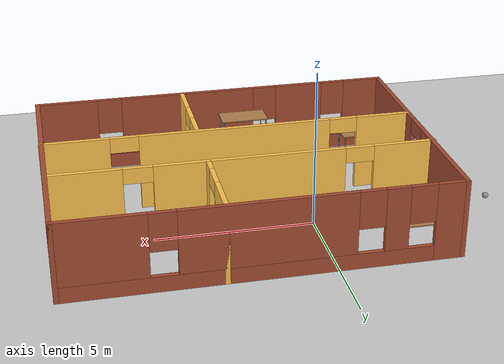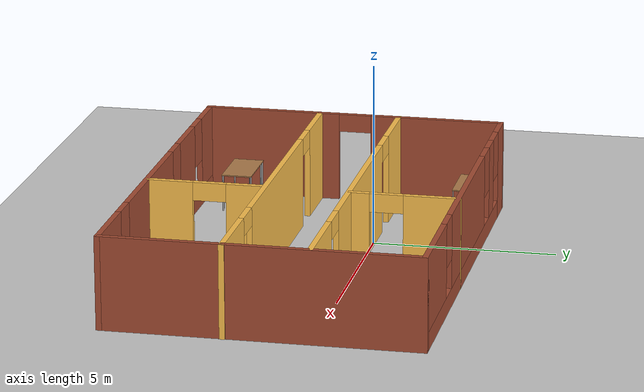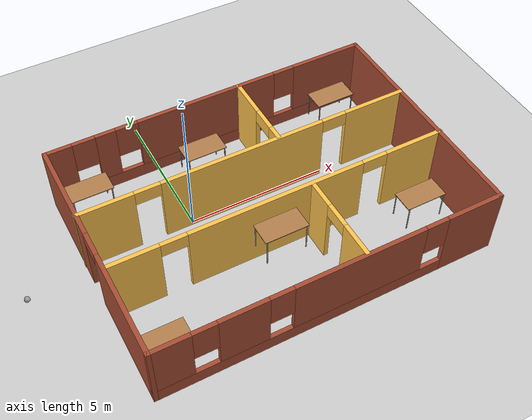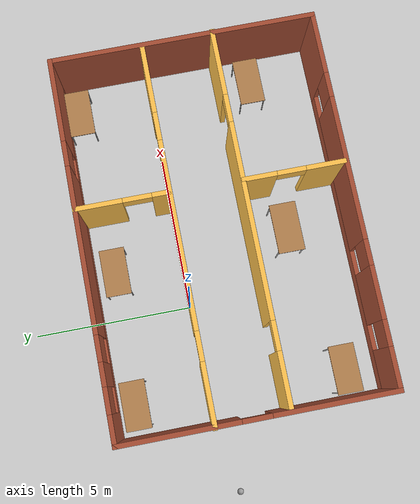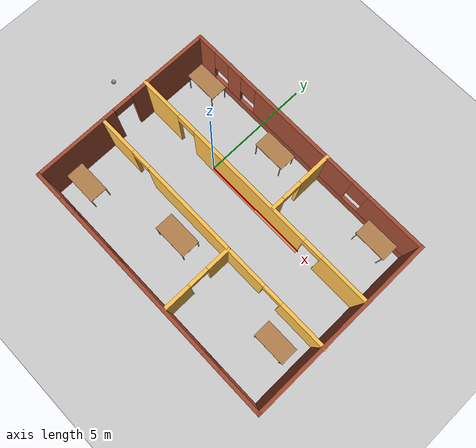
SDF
<sdf version="1.6">
 <world name="default">
  <plugin name="welcome" filename="libwelcome.so"/>
  <light name="sun" type="directional">
   <pose>0 0 10 0 -0 0</pose>
   <diffuse>0.8 0.8 0.8 1</diffuse>
   <specular>0.2 0.2 0.2 1</specular>
   <attenuation>
    <range>1000</range>
    <constant>0.9</constant>
    <linear>0.01</linear>
    <quadratic>0.001</quadratic>
   </attenuation>
   <direction>-0.5 0.1 -0.9</direction>
  </light>
  <model name="ground_plane">
   <static>1</static>
   <link name="link">
    <collision name="collision">
     <geometry><plane><normal>0 0 1</normal><size>100 100</size></plane></geometry>
     <surface><friction><ode><mu>100</mu><mu2>50</mu2></ode></friction></surface>
    </collision>
    <visual name="visual">
     <cast_shadows>0</cast_shadows>
     <geometry><plane><normal>0 0 1</normal><size>100 100</size></plane></geometry>
     <material>
      <script><uri>file://media/materials/scripts/gazebo.material</uri><name>Gazebo/Grey</name></script>
     </material>
    </visual>
   </link>
  </model>
  <gravity>0 0 -9.8</gravity>
  <magnetic_field>6e-06 2.3e-05 -4.2e-05</magnetic_field>
  <atmosphere type="adiabatic"/>
  <physics name="default_physics" default="0" type="ode">
   <max_step_size>0.001</max_step_size>
   <real_time_factor>1</real_time_factor>
   <real_time_update_rate>1000</real_time_update_rate>
  </physics>
  <scene><ambient>0.4 0.4 0.4 1</ambient><background>0.7 0.7 0.7 1</background><shadows>1</shadows></scene>
  <spherical_coordinates>
   <surface_model>EARTH_WGS84</surface_model>
   <latitude_deg>0</latitude_deg>
   <longitude_deg>0</longitude_deg>
   <elevation>0</elevation>
   <heading_deg>0</heading_deg>
  </spherical_coordinates>
  <model name="mybuilding">
   <pose>2.17009 -1.29799 0 0 -0 0</pose>
   <link name="Wall_11">
    <pose>0.023394 -0.971692 0 0 -0 0</pose>
    <visual name="Wall_11_Visual_0">
     <pose>-5.08798 0 1.25 0 -0 0</pose>
     <geometry><box><size>1.82404 0.15 2.5</size></box></geometry>
     <material>
      <script><uri>file://media/materials/scripts/gazebo.material</uri><name>Gazebo/Grey</name></script>
      <ambient>1 0.764706 0.305882 1</ambient>
     </material>
     <meta><layer>0</layer></meta>
    </visual>
    <collision name="Wall_11_Collision_0">
     <geometry><box><size>1.82404 0.15 2.5</size></box></geometry>
     <pose>-5.08798 0 1.25 0 -0 0</pose>
    </collision>
    <visual name="Wall_11_Visual_1">
     <pose>-0.18176 0 1.25 0 -0 0</pose>
     <geometry><box><size>6.1884 0.15 2.5</size></box></geometry>
     <material>
      <script><uri>file://media/materials/scripts/gazebo.material</uri><name>Gazebo/Grey</name></script>
      <ambient>1 0.764706 0.305882 1</ambient>
     </material>
     <meta><layer>0</layer></meta>
    </visual>
    <collision name="Wall_11_Collision_1">
     <geometry><box><size>6.1884 0.15 2.5</size></box></geometry>
     <pose>-0.18176 0 1.25 0 -0 0</pose>
    </collision>
    <visual name="Wall_11_Visual_2">
     <pose>4.90622 0 1.25 0 -0 0</pose>
     <geometry><box><size>2.18756 0.15 2.5</size></box></geometry>
     <material>
      <script><uri>file://media/materials/scripts/gazebo.material</uri><name>Gazebo/Grey</name></script>
      <ambient>1 0.764706 0.305882 1</ambient>
     </material>
     <meta><layer>0</layer></meta>
    </visual>
    <collision name="Wall_11_Collision_2">
     <geometry><box><size>2.18756 0.15 2.5</size></box></geometry>
     <pose>4.90622 0 1.25 0 -0 0</pose>
    </collision>
    <visual name="Wall_11_Visual_3">
     <pose>-3.72596 0 2.25 0 -0 0</pose>
     <geometry><box><size>0.9 0.15 0.5</size></box></geometry>
     <material>
      <script><uri>file://media/materials/scripts/gazebo.material</uri><name>Gazebo/Grey</name></script>
      <ambient>1 0.764706 0.305882 1</ambient>
     </material>
     <meta><layer>0</layer></meta>
    </visual>
    <collision name="Wall_11_Collision_3">
     <geometry><box><size>0.9 0.15 0.5</size></box></geometry>
     <pose>-3.72596 0 2.25 0 -0 0</pose>
    </collision>
    <visual name="Wall_11_Visual_4">
     <pose>3.36244 0 2.25 0 -0 0</pose>
     <geometry><box><size>0.9 0.15 0.5</size></box></geometry>
     <material>
      <script><uri>file://media/materials/scripts/gazebo.material</uri><name>Gazebo/Grey</name></script>
      <ambient>1 0.764706 0.305882 1</ambient>
     </material>
     <meta><layer>0</layer></meta>
    </visual>
    <collision name="Wall_11_Collision_4">
     <geometry><box><size>0.9 0.15 0.5</size></box></geometry>
     <pose>3.36244 0 2.25 0 -0 0</pose>
    </collision>
   </link>
   <link name="Wall_13">
    <pose>1.11661 2.75 0 0 0 -1.5708</pose>
    <visual name="Wall_13_Visual_0">
     <pose>-0.740041 0 1.25 0 -0 0</pose>
     <geometry><box><size>1.51992 0.15 2.5</size></box></geometry>
     <material>
      <script><uri>file://media/materials/scripts/gazebo.material</uri><name>Gazebo/Grey</name></script>
      <ambient>1 0.764706 0.305882 1</ambient>
     </material>
     <meta><layer>0</layer></meta>
    </visual>
    <collision name="Wall_13_Collision_0">
     <geometry><box><size>1.51992 0.15 2.5</size></box></geometry>
     <pose>-0.740041 0 1.25 0 -0 0</pose>
    </collision>
    <visual name="Wall_13_Visual_1">
     <pose>1.20996 0 1.25 0 -0 0</pose>
     <geometry><box><size>0.580082 0.15 2.5</size></box></geometry>
     <material>
      <script><uri>file://media/materials/scripts/gazebo.material</uri><name>Gazebo/Grey</name></script>
      <ambient>1 0.764706 0.305882 1</ambient>
     </material>
     <meta><layer>0</layer></meta>
    </visual>
    <collision name="Wall_13_Collision_1">
     <geometry><box><size>0.580082 0.15 2.5</size></box></geometry>
     <pose>1.20996 0 1.25 0 -0 0</pose>
    </collision>
    <visual name="Wall_13_Visual_2">
     <pose>0.469918 0 2.25 0 -0 0</pose>
     <geometry><box><size>0.9 0.15 0.5</size></box></geometry>
     <material>
      <script><uri>file://media/materials/scripts/gazebo.material</uri><name>Gazebo/Grey</name></script>
      <ambient>1 0.764706 0.305882 1</ambient>
     </material>
     <meta><layer>0</layer></meta>
    </visual>
    <collision name="Wall_13_Collision_2">
     <geometry><box><size>0.9 0.15 0.5</size></box></geometry>
     <pose>0.469918 0 2.25 0 -0 0</pose>
    </collision>
   </link>
   <link name="Wall_15">
    <pose>1.06982 -2.54508 0 0 0 -1.5708</pose>
    <visual name="Wall_15_Visual_0">
     <pose>-1.07559 0 1.25 0 -0 0</pose>
     <geometry><box><size>1.09882 0.15 2.5</size></box></geometry>
     <material>
      <script><uri>file://media/materials/scripts/gazebo.material</uri><name>Gazebo/Grey</name></script>
      <ambient>1 0.764706 0.305882 1</ambient>
     </material>
     <meta><layer>0</layer></meta>
    </visual>
    <collision name="Wall_15_Collision_0">
     <geometry><box><size>1.09882 0.15 2.5</size></box></geometry>
     <pose>-1.07559 0 1.25 0 -0 0</pose>
    </collision>
    <visual name="Wall_15_Visual_1">
     <pose>0.999413 0 1.25 0 -0 0</pose>
     <geometry><box><size>1.25117 0.15 2.5</size></box></geometry>
     <material>
      <script><uri>file://media/materials/scripts/gazebo.material</uri><name>Gazebo/Grey</name></script>
      <ambient>1 0.764706 0.305882 1</ambient>
     </material>
     <meta><layer>0</layer></meta>
    </visual>
    <collision name="Wall_15_Collision_1">
     <geometry><box><size>1.25117 0.15 2.5</size></box></geometry>
     <pose>0.999413 0 1.25 0 -0 0</pose>
    </collision>
    <visual name="Wall_15_Visual_2">
     <pose>-0.076175 0 2.25 0 -0 0</pose>
     <geometry><box><size>0.9 0.15 0.5</size></box></geometry>
     <material>
      <script><uri>file://media/materials/scripts/gazebo.material</uri><name>Gazebo/Grey</name></script>
      <ambient>1 0.764706 0.305882 1</ambient>
     </material>
     <meta><layer>0</layer></meta>
    </visual>
    <collision name="Wall_15_Collision_2">
     <geometry><box><size>0.9 0.15 0.5</size></box></geometry>
     <pose>-0.076175 0 2.25 0 -0 0</pose>
    </collision>
   </link>
   <link name="Wall_4">
    <pose>0 4.175 0 0 -0 0</pose>
    <visual name="Wall_4_Visual_0">
     <pose>-5.50747 0 1.25 0 -0 0</pose>
     <geometry><box><size>0.985067 0.15 2.5</size></box></geometry>
     <material>
      <script><uri>file://media/materials/scripts/gazebo.material</uri><name>Gazebo/Bricks</name></script>
      <ambient>1 0.764706 0.305882 1</ambient>
     </material>
     <meta><layer>0</layer></meta>
    </visual>
    <collision name="Wall_4_Collision_0">
     <geometry><box><size>0.985067 0.15 2.5</size></box></geometry>
     <pose>-5.50747 0 1.25 0 -0 0</pose>
    </collision>
    <visual name="Wall_4_Visual_1">
     <pose>0.492533 0 0.25 0 -0 0</pose>
     <geometry><box><size>11.0149 0.15 0.5</size></box></geometry>
     <material>
      <script><uri>file://media/materials/scripts/gazebo.material</uri><name>Gazebo/Bricks</name></script>
      <ambient>1 0.764706 0.305882 1</ambient>
     </material>
     <meta><layer>0</layer></meta>
    </visual>
    <collision name="Wall_4_Collision_1">
     <geometry><box><size>11.0149 0.15 0.5</size></box></geometry>
     <pose>0.492533 0 0.25 0 -0 0</pose>
    </collision>
    <visual name="Wall_4_Visual_2">
     <pose>-3.85463 0 1.5 0 -0 0</pose>
     <geometry><box><size>0.720614 0.15 2</size></box></geometry>
     <material>
      <script><uri>file://media/materials/scripts/gazebo.material</uri><name>Gazebo/Bricks</name></script>
      <ambient>1 0.764706 0.305882 1</ambient>
     </material>
     <meta><layer>0</layer></meta>
    </visual>
    <collision name="Wall_4_Collision_2">
     <geometry><box><size>0.720614 0.15 2</size></box></geometry>
     <pose>-3.85463 0 1.5 0 -0 0</pose>
    </collision>
    <visual name="Wall_4_Visual_3">
     <pose>-0.099881 0 1.5 0 -0 0</pose>
     <geometry><box><size>5.18888 0.15 2</size></box></geometry>
     <material>
      <script><uri>file://media/materials/scripts/gazebo.material</uri><name>Gazebo/Bricks</name></script>
      <ambient>1 0.764706 0.305882 1</ambient>
     </material>
     <meta><layer>0</layer></meta>
    </visual>
    <collision name="Wall_4_Collision_3">
     <geometry><box><size>5.18888 0.15 2</size></box></geometry>
     <pose>-0.099881 0 1.5 0 -0 0</pose>
    </collision>
    <visual name="Wall_4_Visual_4">
     <pose>4.64728 0 1.5 0 -0 0</pose>
     <geometry><box><size>2.70544 0.15 2</size></box></geometry>
     <material>
      <script><uri>file://media/materials/scripts/gazebo.material</uri><name>Gazebo/Bricks</name></script>
      <ambient>1 0.764706 0.305882 1</ambient>
     </material>
     <meta><layer>0</layer></meta>
    </visual>
    <collision name="Wall_4_Collision_4">
     <geometry><box><size>2.70544 0.15 2</size></box></geometry>
     <pose>4.64728 0 1.5 0 -0 0</pose>
    </collision>
    <visual name="Wall_4_Visual_5">
     <pose>-4.61493 0 1.9 0 -0 0</pose>
     <geometry><box><size>0.8 0.15 1.2</size></box></geometry>
     <material>
      <script><uri>file://media/materials/scripts/gazebo.material</uri><name>Gazebo/Bricks</name></script>
      <ambient>1 0.764706 0.305882 1</ambient>
     </material>
     <meta><layer>0</layer></meta>
    </visual>
    <collision name="Wall_4_Collision_5">
     <geometry><box><size>0.8 0.15 1.2</size></box></geometry>
     <pose>-4.61493 0 1.9 0 -0 0</pose>
    </collision>
    <visual name="Wall_4_Visual_6">
     <pose>-3.09432 0 1.9 0 -0 0</pose>
     <geometry><box><size>0.8 0.15 1.2</size></box></geometry>
     <material>
      <script><uri>file://media/materials/scripts/gazebo.material</uri><name>Gazebo/Bricks</name></script>
      <ambient>1 0.764706 0.305882 1</ambient>
     </material>
     <meta><layer>0</layer></meta>
    </visual>
    <collision name="Wall_4_Collision_6">
     <geometry><box><size>0.8 0.15 1.2</size></box></geometry>
     <pose>-3.09432 0 1.9 0 -0 0</pose>
    </collision>
    <visual name="Wall_4_Visual_7">
     <pose>2.89456 0 1.9 0 -0 0</pose>
     <geometry><box><size>0.8 0.15 1.2</size></box></geometry>
     <material>
      <script><uri>file://media/materials/scripts/gazebo.material</uri><name>Gazebo/Bricks</name></script>
      <ambient>1 0.764706 0.305882 1</ambient>
     </material>
     <meta><layer>0</layer></meta>
    </visual>
    <collision name="Wall_4_Collision_7">
     <geometry><box><size>0.8 0.15 1.2</size></box></geometry>
     <pose>2.89456 0 1.9 0 -0 0</pose>
    </collision>
   </link>
   <link name="Wall_5">
    <collision name="Wall_5_Collision">
     <geometry><box><size>8.5 0.15 2.5</size></box></geometry>
     <pose>0 0 1.25 0 -0 0</pose>
    </collision>
    <visual name="Wall_5_Visual">
     <pose>0 0 1.25 0 -0 0</pose>
     <geometry><box><size>8.5 0.15 2.5</size></box></geometry>
     <material>
      <script><uri>file://media/materials/scripts/gazebo.material</uri><name>Gazebo/Bricks</name></script>
      <ambient>1 1 1 1</ambient>
     </material>
     <meta><layer>0</layer></meta>
    </visual>
    <pose>5.925 0 0 0 0 -1.5708</pose>
   </link>
   <link name="Wall_6">
    <pose>0 -4.175 0 0 -0 3.14159</pose>
    <visual name="Wall_6_Visual_0">
     <pose>-4.9748 0 1.25 0 -0 0</pose>
     <geometry><box><size>2.05041 0.15 2.5</size></box></geometry>
     <material>
      <script><uri>file://media/materials/scripts/gazebo.material</uri><name>Gazebo/Bricks</name></script>
      <ambient>1 1 1 1</ambient>
     </material>
     <meta><layer>0</layer></meta>
    </visual>
    <collision name="Wall_6_Collision_0">
     <geometry><box><size>2.05041 0.15 2.5</size></box></geometry>
     <pose>-4.9748 0 1.25 0 -0 0</pose>
    </collision>
    <visual name="Wall_6_Visual_1">
     <pose>1.0252 0 0.25 0 -0 0</pose>
     <geometry><box><size>9.94959 0.15 0.5</size></box></geometry>
     <material>
      <script><uri>file://media/materials/scripts/gazebo.material</uri><name>Gazebo/Bricks</name></script>
      <ambient>1 1 1 1</ambient>
     </material>
     <meta><layer>0</layer></meta>
    </visual>
    <collision name="Wall_6_Collision_1">
     <geometry><box><size>9.94959 0.15 0.5</size></box></geometry>
     <pose>1.0252 0 0.25 0 -0 0</pose>
    </collision>
    <visual name="Wall_6_Visual_2">
     <pose>-0.870972 0 1.5 0 -0 0</pose>
     <geometry><box><size>4.55724 0.15 2</size></box></geometry>
     <material>
      <script><uri>file://media/materials/scripts/gazebo.material</uri><name>Gazebo/Bricks</name></script>
      <ambient>1 1 1 1</ambient>
     </material>
     <meta><layer>0</layer></meta>
    </visual>
    <collision name="Wall_6_Collision_2">
     <geometry><box><size>4.55724 0.15 2</size></box></geometry>
     <pose>-0.870972 0 1.5 0 -0 0</pose>
    </collision>
    <visual name="Wall_6_Visual_3">
     <pose>3.02414 0 1.5 0 -0 0</pose>
     <geometry><box><size>1.63298 0.15 2</size></box></geometry>
     <material>
      <script><uri>file://media/materials/scripts/gazebo.material</uri><name>Gazebo/Bricks</name></script>
      <ambient>1 1 1 1</ambient>
     </material>
     <meta><layer>0</layer></meta>
    </visual>
    <collision name="Wall_6_Collision_3">
     <geometry><box><size>1.63298 0.15 2</size></box></geometry>
     <pose>3.02414 0 1.5 0 -0 0</pose>
    </collision>
    <visual name="Wall_6_Visual_4">
     <pose>5.32031 0 1.5 0 -0 0</pose>
     <geometry><box><size>1.35937 0.15 2</size></box></geometry>
     <material>
      <script><uri>file://media/materials/scripts/gazebo.material</uri><name>Gazebo/Bricks</name></script>
      <ambient>1 1 1 1</ambient>
     </material>
     <meta><layer>0</layer></meta>
    </visual>
    <collision name="Wall_6_Collision_4">
     <geometry><box><size>1.35937 0.15 2</size></box></geometry>
     <pose>5.32031 0 1.5 0 -0 0</pose>
    </collision>
    <visual name="Wall_6_Visual_5">
     <pose>-3.54959 0 1.9 0 -0 0</pose>
     <geometry><box><size>0.8 0.15 1.2</size></box></geometry>
     <material>
      <script><uri>file://media/materials/scripts/gazebo.material</uri><name>Gazebo/Bricks</name></script>
      <ambient>1 1 1 1</ambient>
     </material>
     <meta><layer>0</layer></meta>
    </visual>
    <collision name="Wall_6_Collision_5">
     <geometry><box><size>0.8 0.15 1.2</size></box></geometry>
     <pose>-3.54959 0 1.9 0 -0 0</pose>
    </collision>
    <visual name="Wall_6_Visual_6">
     <pose>1.80765 0 1.9 0 -0 0</pose>
     <geometry><box><size>0.8 0.15 1.2</size></box></geometry>
     <material>
      <script><uri>file://media/materials/scripts/gazebo.material</uri><name>Gazebo/Bricks</name></script>
      <ambient>1 1 1 1</ambient>
     </material>
     <meta><layer>0</layer></meta>
    </visual>
    <collision name="Wall_6_Collision_6">
     <geometry><box><size>0.8 0.15 1.2</size></box></geometry>
     <pose>1.80765 0 1.9 0 -0 0</pose>
    </collision>
    <visual name="Wall_6_Visual_7">
     <pose>4.24063 0 1.9 0 -0 0</pose>
     <geometry><box><size>0.8 0.15 1.2</size></box></geometry>
     <material>
      <script><uri>file://media/materials/scripts/gazebo.material</uri><name>Gazebo/Bricks</name></script>
      <ambient>1 1 1 1</ambient>
     </material>
     <meta><layer>0</layer></meta>
    </visual>
    <collision name="Wall_6_Collision_7">
     <geometry><box><size>0.8 0.15 1.2</size></box></geometry>
     <pose>4.24063 0 1.9 0 -0 0</pose>
    </collision>
   </link>
   <link name="Wall_7">
    <pose>-5.925 0 0 0 -0 1.5708</pose>
    <visual name="Wall_7_Visual_0">
     <pose>-2.33287 0 1.25 0 -0 0</pose>
     <geometry><box><size>3.83425 0.15 2.5</size></box></geometry>
     <material>
      <script><uri>file://media/materials/scripts/gazebo.material</uri><name>Gazebo/Bricks</name></script>
      <ambient>1 1 1 1</ambient>
     </material>
     <meta><layer>0</layer></meta>
    </visual>
    <collision name="Wall_7_Collision_0">
     <geometry><box><size>3.83425 0.15 2.5</size></box></geometry>
     <pose>-2.33287 0 1.25 0 -0 0</pose>
    </collision>
    <visual name="Wall_7_Visual_1">
     <pose>2.36713 0 1.25 0 -0 0</pose>
     <geometry><box><size>3.76575 0.15 2.5</size></box></geometry>
     <material>
      <script><uri>file://media/materials/scripts/gazebo.material</uri><name>Gazebo/Bricks</name></script>
      <ambient>1 1 1 1</ambient>
     </material>
     <meta><layer>0</layer></meta>
    </visual>
    <collision name="Wall_7_Collision_1">
     <geometry><box><size>3.76575 0.15 2.5</size></box></geometry>
     <pose>2.36713 0 1.25 0 -0 0</pose>
    </collision>
    <visual name="Wall_7_Visual_2">
     <pose>0.034253 0 2.25 0 -0 0</pose>
     <geometry><box><size>0.9 0.15 0.5</size></box></geometry>
     <material>
      <script><uri>file://media/materials/scripts/gazebo.material</uri><name>Gazebo/Bricks</name></script>
      <ambient>1 1 1 1</ambient>
     </material>
     <meta><layer>0</layer></meta>
    </visual>
    <collision name="Wall_7_Collision_2">
     <geometry><box><size>0.9 0.15 0.5</size></box></geometry>
     <pose>0.034253 0 2.25 0 -0 0</pose>
    </collision>
   </link>
   <link name="Wall_9">
    <pose>-0.023394 1.27414 0 0 -0 0</pose>
    <visual name="Wall_9_Visual_0">
     <pose>-5.0061 0 1.25 0 -0 0</pose>
     <geometry><box><size>1.9878 0.15 2.5</size></box></geometry>
     <material>
      <script><uri>file://media/materials/scripts/gazebo.material</uri><name>Gazebo/Grey</name></script>
      <ambient>1 0.764706 0.305882 1</ambient>
     </material>
     <meta><layer>0</layer></meta>
    </visual>
    <collision name="Wall_9_Collision_0">
     <geometry><box><size>1.9878 0.15 2.5</size></box></geometry>
     <pose>-5.0061 0 1.25 0 -0 0</pose>
    </collision>
    <visual name="Wall_9_Visual_1">
     <pose>-0.158366 0 1.25 0 -0 0</pose>
     <geometry><box><size>5.90767 0.15 2.5</size></box></geometry>
     <material>
      <script><uri>file://media/materials/scripts/gazebo.material</uri><name>Gazebo/Grey</name></script>
      <ambient>1 0.764706 0.305882 1</ambient>
     </material>
     <meta><layer>0</layer></meta>
    </visual>
    <collision name="Wall_9_Collision_1">
     <geometry><box><size>5.90767 0.15 2.5</size></box></geometry>
     <pose>-0.158366 0 1.25 0 -0 0</pose>
    </collision>
    <visual name="Wall_9_Visual_2">
     <pose>4.84773 0 1.25 0 -0 0</pose>
     <geometry><box><size>2.30453 0.15 2.5</size></box></geometry>
     <material>
      <script><uri>file://media/materials/scripts/gazebo.material</uri><name>Gazebo/Grey</name></script>
      <ambient>1 0.764706 0.305882 1</ambient>
     </material>
     <meta><layer>0</layer></meta>
    </visual>
    <collision name="Wall_9_Collision_2">
     <geometry><box><size>2.30453 0.15 2.5</size></box></geometry>
     <pose>4.84773 0 1.25 0 -0 0</pose>
    </collision>
    <visual name="Wall_9_Visual_3">
     <pose>-3.5622 0 2.25 0 -0 0</pose>
     <geometry><box><size>0.9 0.15 0.5</size></box></geometry>
     <material>
      <script><uri>file://media/materials/scripts/gazebo.material</uri><name>Gazebo/Grey</name></script>
      <ambient>1 0.764706 0.305882 1</ambient>
     </material>
     <meta><layer>0</layer></meta>
    </visual>
    <collision name="Wall_9_Collision_3">
     <geometry><box><size>0.9 0.15 0.5</size></box></geometry>
     <pose>-3.5622 0 2.25 0 -0 0</pose>
    </collision>
    <visual name="Wall_9_Visual_4">
     <pose>3.24547 0 2.25 0 -0 0</pose>
     <geometry><box><size>0.9 0.15 0.5</size></box></geometry>
     <material>
      <script><uri>file://media/materials/scripts/gazebo.material</uri><name>Gazebo/Grey</name></script>
      <ambient>1 0.764706 0.305882 1</ambient>
     </material>
     <meta><layer>0</layer></meta>
    </visual>
    <collision name="Wall_9_Collision_4">
     <geometry><box><size>0.9 0.15 0.5</size></box></geometry>
     <pose>3.24547 0 2.25 0 -0 0</pose>
    </collision>
   </link>
   <static>1</static>
  </model>
  <model name="table">
   <static>1</static>
   <link name="link">
    <collision name="surface">
     <pose>0 0 1 0 -0 0</pose>
     <geometry><box><size>1.5 0.8 0.03</size></box></geometry>
     <surface><friction><ode><mu>0.6</mu><mu2>0.6</mu2></ode></friction></surface>
    </collision>
    <visual name="visual1">
     <pose>0 0 1 0 -0 0</pose>
     <geometry><box><size>1.5 0.8 0.03</size></box></geometry>
     <material>
      <script><uri>file://media/materials/scripts/gazebo.material</uri><name>Gazebo/Wood</name></script>
     </material>
    </visual>
    <collision name="front_left_leg">
     <pose>0.68 0.38 0.5 0 -0 0</pose>
     <geometry><cylinder><radius>0.02</radius><length>1</length></cylinder></geometry>
    </collision>
    <visual name="front_left_leg">
     <pose>0.68 0.38 0.5 0 -0 0</pose>
     <geometry><cylinder><radius>0.02</radius><length>1</length></cylinder></geometry>
     <material>
      <script><uri>file://media/materials/scripts/gazebo.material</uri><name>Gazebo/Grey</name></script>
     </material>
    </visual>
    <collision name="front_right_leg">
     <pose>0.68 -0.38 0.5 0 -0 0</pose>
     <geometry><cylinder><radius>0.02</radius><length>1</length></cylinder></geometry>
    </collision>
    <visual name="front_right_leg">
     <pose>0.68 -0.38 0.5 0 -0 0</pose>
     <geometry><cylinder><radius>0.02</radius><length>1</length></cylinder></geometry>
     <material>
      <script><uri>file://media/materials/scripts/gazebo.material</uri><name>Gazebo/Grey</name></script>
     </material>
    </visual>
    <collision name="back_right_leg">
     <pose>-0.68 -0.38 0.5 0 -0 0</pose>
     <geometry><cylinder><radius>0.02</radius><length>1</length></cylinder></geometry>
    </collision>
    <visual name="back_right_leg">
     <pose>-0.68 -0.38 0.5 0 -0 0</pose>
     <geometry><cylinder><radius>0.02</radius><length>1</length></cylinder></geometry>
     <material>
      <script><uri>file://media/materials/scripts/gazebo.material</uri><name>Gazebo/Grey</name></script>
     </material>
    </visual>
    <collision name="back_left_leg">
     <pose>-0.68 0.38 0.5 0 -0 0</pose>
     <geometry><cylinder><radius>0.02</radius><length>1</length></cylinder></geometry>
    </collision>
    <visual name="back_left_leg">
     <pose>-0.68 0.38 0.5 0 -0 0</pose>
     <geometry><cylinder><radius>0.02</radius><length>1</length></cylinder></geometry>
     <material>
      <script><uri>file://media/materials/scripts/gazebo.material</uri><name>Gazebo/Grey</name></script>
     </material>
    </visual>
   </link>
   <pose>1.43949 2.1182 0 0 -0 0</pose>
  </model>
  <model name="table_0">
   <static>1</static>
   <link name="link">
    <collision name="surface">
     <pose>0 0 1 0 -0 0</pose>
     <geometry><box><size>1.5 0.8 0.03</size></box></geometry>
     <surface><friction><ode><mu>0.6</mu><mu2>0.6</mu2></ode></friction></surface>
    </collision>
    <visual name="visual1">
     <pose>0 0 1 0 -0 0</pose>
     <geometry><box><size>1.5 0.8 0.03</size></box></geometry>
     <material>
      <script><uri>file://media/materials/scripts/gazebo.material</uri><name>Gazebo/Wood</name></script>
     </material>
    </visual>
    <collision name="front_left_leg">
     <pose>0.68 0.38 0.5 0 -0 0</pose>
     <geometry><cylinder><radius>0.02</radius><length>1</length></cylinder></geometry>
    </collision>
    <visual name="front_left_leg">
     <pose>0.68 0.38 0.5 0 -0 0</pose>
     <geometry><cylinder><radius>0.02</radius><length>1</length></cylinder></geometry>
     <material>
      <script><uri>file://media/materials/scripts/gazebo.material</uri><name>Gazebo/Grey</name></script>
     </material>
    </visual>
    <collision name="front_right_leg">
     <pose>0.68 -0.38 0.5 0 -0 0</pose>
     <geometry><cylinder><radius>0.02</radius><length>1</length></cylinder></geometry>
    </collision>
    <visual name="front_right_leg">
     <pose>0.68 -0.38 0.5 0 -0 0</pose>
     <geometry><cylinder><radius>0.02</radius><length>1</length></cylinder></geometry>
     <material>
      <script><uri>file://media/materials/scripts/gazebo.material</uri><name>Gazebo/Grey</name></script>
     </material>
    </visual>
    <collision name="back_right_leg">
     <pose>-0.68 -0.38 0.5 0 -0 0</pose>
     <geometry><cylinder><radius>0.02</radius><length>1</length></cylinder></geometry>
    </collision>
    <visual name="back_right_leg">
     <pose>-0.68 -0.38 0.5 0 -0 0</pose>
     <geometry><cylinder><radius>0.02</radius><length>1</length></cylinder></geometry>
     <material>
      <script><uri>file://media/materials/scripts/gazebo.material</uri><name>Gazebo/Grey</name></script>
     </material>
    </visual>
    <collision name="back_left_leg">
     <pose>-0.68 0.38 0.5 0 -0 0</pose>
     <geometry><cylinder><radius>0.02</radius><length>1</length></cylinder></geometry>
    </collision>
    <visual name="back_left_leg">
     <pose>-0.68 0.38 0.5 0 -0 0</pose>
     <geometry><cylinder><radius>0.02</radius><length>1</length></cylinder></geometry>
     <material>
      <script><uri>file://media/materials/scripts/gazebo.material</uri><name>Gazebo/Grey</name></script>
     </material>
    </visual>
   </link>
   <pose>6.83177 2.36397 0 0 -0 0</pose>
  </model>
  <model name="table_1">
   <static>1</static>
   <link name="link">
    <collision name="surface">
     <pose>0 0 1 0 -0 0</pose>
     <geometry><box><size>1.5 0.8 0.03</size></box></geometry>
     <surface><friction><ode><mu>0.6</mu><mu2>0.6</mu2></ode></friction></surface>
    </collision>
    <visual name="visual1">
     <pose>0 0 1 0 -0 0</pose>
     <geometry><box><size>1.5 0.8 0.03</size></box></geometry>
     <material>
      <script><uri>file://media/materials/scripts/gazebo.material</uri><name>Gazebo/Wood</name></script>
     </material>
    </visual>
    <collision name="front_left_leg">
     <pose>0.68 0.38 0.5 0 -0 0</pose>
     <geometry><cylinder><radius>0.02</radius><length>1</length></cylinder></geometry>
    </collision>
    <visual name="front_left_leg">
     <pose>0.68 0.38 0.5 0 -0 0</pose>
     <geometry><cylinder><radius>0.02</radius><length>1</length></cylinder></geometry>
     <material>
      <script><uri>file://media/materials/scripts/gazebo.material</uri><name>Gazebo/Grey</name></script>
     </material>
    </visual>
    <collision name="front_right_leg">
     <pose>0.68 -0.38 0.5 0 -0 0</pose>
     <geometry><cylinder><radius>0.02</radius><length>1</length></cylinder></geometry>
    </collision>
    <visual name="front_right_leg">
     <pose>0.68 -0.38 0.5 0 -0 0</pose>
     <geometry><cylinder><radius>0.02</radius><length>1</length></cylinder></geometry>
     <material>
      <script><uri>file://media/materials/scripts/gazebo.material</uri><name>Gazebo/Grey</name></script>
     </material>
    </visual>
    <collision name="back_right_leg">
     <pose>-0.68 -0.38 0.5 0 -0 0</pose>
     <geometry><cylinder><radius>0.02</radius><length>1</length></cylinder></geometry>
    </collision>
    <visual name="back_right_leg">
     <pose>-0.68 -0.38 0.5 0 -0 0</pose>
     <geometry><cylinder><radius>0.02</radius><length>1</length></cylinder></geometry>
     <material>
      <script><uri>file://media/materials/scripts/gazebo.material</uri><name>Gazebo/Grey</name></script>
     </material>
    </visual>
    <collision name="back_left_leg">
     <pose>-0.68 0.38 0.5 0 -0 0</pose>
     <geometry><cylinder><radius>0.02</radius><length>1</length></cylinder></geometry>
    </collision>
    <visual name="back_left_leg">
     <pose>-0.68 0.38 0.5 0 -0 0</pose>
     <geometry><cylinder><radius>0.02</radius><length>1</length></cylinder></geometry>
     <material>
      <script><uri>file://media/materials/scripts/gazebo.material</uri><name>Gazebo/Grey</name></script>
     </material>
    </visual>
   </link>
   <pose>6.882 -3.28388 0 0 -0 0</pose>
  </model>
  <model name="table_2">
   <static>1</static>
   <link name="link">
    <collision name="surface">
     <pose>0 0 1 0 -0 0</pose>
     <geometry><box><size>1.5 0.8 0.03</size></box></geometry>
     <surface><friction><ode><mu>0.6</mu><mu2>0.6</mu2></ode></friction></surface>
    </collision>
    <visual name="visual1">
     <pose>0 0 1 0 -0 0</pose>
     <geometry><box><size>1.5 0.8 0.03</size></box></geometry>
     <material>
      <script><uri>file://media/materials/scripts/gazebo.material</uri><name>Gazebo/Wood</name></script>
     </material>
    </visual>
    <collision name="front_left_leg">
     <pose>0.68 0.38 0.5 0 -0 0</pose>
     <geometry><cylinder><radius>0.02</radius><length>1</length></cylinder></geometry>
    </collision>
    <visual name="front_left_leg">
     <pose>0.68 0.38 0.5 0 -0 0</pose>
     <geometry><cylinder><radius>0.02</radius><length>1</length></cylinder></geometry>
     <material>
      <script><uri>file://media/materials/scripts/gazebo.material</uri><name>Gazebo/Grey</name></script>
     </material>
    </visual>
    <collision name="front_right_leg">
     <pose>0.68 -0.38 0.5 0 -0 0</pose>
     <geometry><cylinder><radius>0.02</radius><length>1</length></cylinder></geometry>
    </collision>
    <visual name="front_right_leg">
     <pose>0.68 -0.38 0.5 0 -0 0</pose>
     <geometry><cylinder><radius>0.02</radius><length>1</length></cylinder></geometry>
     <material>
      <script><uri>file://media/materials/scripts/gazebo.material</uri><name>Gazebo/Grey</name></script>
     </material>
    </visual>
    <collision name="back_right_leg">
     <pose>-0.68 -0.38 0.5 0 -0 0</pose>
     <geometry><cylinder><radius>0.02</radius><length>1</length></cylinder></geometry>
    </collision>
    <visual name="back_right_leg">
     <pose>-0.68 -0.38 0.5 0 -0 0</pose>
     <geometry><cylinder><radius>0.02</radius><length>1</length></cylinder></geometry>
     <material>
      <script><uri>file://media/materials/scripts/gazebo.material</uri><name>Gazebo/Grey</name></script>
     </material>
    </visual>
    <collision name="back_left_leg">
     <pose>-0.68 0.38 0.5 0 -0 0</pose>
     <geometry><cylinder><radius>0.02</radius><length>1</length></cylinder></geometry>
    </collision>
    <visual name="back_left_leg">
     <pose>-0.68 0.38 0.5 0 -0 0</pose>
     <geometry><cylinder><radius>0.02</radius><length>1</length></cylinder></geometry>
     <material>
      <script><uri>file://media/materials/scripts/gazebo.material</uri><name>Gazebo/Grey</name></script>
     </material>
    </visual>
   </link>
   <pose>1.56485 -3.26675 1.41558 0 -0 0</pose>
  </model>
  <model name="table_3">
   <static>1</static>
   <link name="link">
    <collision name="surface">
     <pose>0 0 1 0 -0 0</pose>
     <geometry><box><size>1.5 0.8 0.03</size></box></geometry>
     <surface><friction><ode><mu>0.6</mu><mu2>0.6</mu2></ode></friction></surface>
    </collision>
    <visual name="visual1">
     <pose>0 0 1 0 -0 0</pose>
     <geometry><box><size>1.5 0.8 0.03</size></box></geometry>
     <material>
      <script><uri>file://media/materials/scripts/gazebo.material</uri><name>Gazebo/Wood</name></script>
     </material>
    </visual>
    <collision name="front_left_leg">
     <pose>0.68 0.38 0.5 0 -0 0</pose>
     <geometry><cylinder><radius>0.02</radius><length>1</length></cylinder></geometry>
    </collision>
    <visual name="front_left_leg">
     <pose>0.68 0.38 0.5 0 -0 0</pose>
     <geometry><cylinder><radius>0.02</radius><length>1</length></cylinder></geometry>
     <material>
      <script><uri>file://media/materials/scripts/gazebo.material</uri><name>Gazebo/Grey</name></script>
     </material>
    </visual>
    <collision name="front_right_leg">
     <pose>0.68 -0.38 0.5 0 -0 0</pose>
     <geometry><cylinder><radius>0.02</radius><length>1</length></cylinder></geometry>
    </collision>
    <visual name="front_right_leg">
     <pose>0.68 -0.38 0.5 0 -0 0</pose>
     <geometry><cylinder><radius>0.02</radius><length>1</length></cylinder></geometry>
     <material>
      <script><uri>file://media/materials/scripts/gazebo.material</uri><name>Gazebo/Grey</name></script>
     </material>
    </visual>
    <collision name="back_right_leg">
     <pose>-0.68 -0.38 0.5 0 -0 0</pose>
     <geometry><cylinder><radius>0.02</radius><length>1</length></cylinder></geometry>
    </collision>
    <visual name="back_right_leg">
     <pose>-0.68 -0.38 0.5 0 -0 0</pose>
     <geometry><cylinder><radius>0.02</radius><length>1</length></cylinder></geometry>
     <material>
      <script><uri>file://media/materials/scripts/gazebo.material</uri><name>Gazebo/Grey</name></script>
     </material>
    </visual>
    <collision name="back_left_leg">
     <pose>-0.68 0.38 0.5 0 -0 0</pose>
     <geometry><cylinder><radius>0.02</radius><length>1</length></cylinder></geometry>
    </collision>
    <visual name="back_left_leg">
     <pose>-0.68 0.38 0.5 0 -0 0</pose>
     <geometry><cylinder><radius>0.02</radius><length>1</length></cylinder></geometry>
     <material>
      <script><uri>file://media/materials/scripts/gazebo.material</uri><name>Gazebo/Grey</name></script>
     </material>
    </visual>
   </link>
   <pose>-2.85845 -4.33544 0 0 -0 0</pose>
  </model>
  <model name="table_4">
   <static>1</static>
   <link name="link">
    <collision name="surface">
     <pose>0 0 1 0 -0 0</pose>
     <geometry><box><size>1.5 0.8 0.03</size></box></geometry>
     <surface><friction><ode><mu>0.6</mu><mu2>0.6</mu2></ode></friction></surface>
    </collision>
    <visual name="visual1">
     <pose>0 0 1 0 -0 0</pose>
     <geometry><box><size>1.5 0.8 0.03</size></box></geometry>
     <material>
      <script><uri>file://media/materials/scripts/gazebo.material</uri><name>Gazebo/Wood</name></script>
     </material>
    </visual>
    <collision name="front_left_leg">
     <pose>0.68 0.38 0.5 0 -0 0</pose>
     <geometry><cylinder><radius>0.02</radius><length>1</length></cylinder></geometry>
    </collision>
    <visual name="front_left_leg">
     <pose>0.68 0.38 0.5 0 -0 0</pose>
     <geometry><cylinder><radius>0.02</radius><length>1</length></cylinder></geometry>
     <material>
      <script><uri>file://media/materials/scripts/gazebo.material</uri><name>Gazebo/Grey</name></script>
     </material>
    </visual>
    <collision name="front_right_leg">
     <pose>0.68 -0.38 0.5 0 -0 0</pose>
     <geometry><cylinder><radius>0.02</radius><length>1</length></cylinder></geometry>
    </collision>
    <visual name="front_right_leg">
     <pose>0.68 -0.38 0.5 0 -0 0</pose>
     <geometry><cylinder><radius>0.02</radius><length>1</length></cylinder></geometry>
     <material>
      <script><uri>file://media/materials/scripts/gazebo.material</uri><name>Gazebo/Grey</name></script>
     </material>
    </visual>
    <collision name="back_right_leg">
     <pose>-0.68 -0.38 0.5 0 -0 0</pose>
     <geometry><cylinder><radius>0.02</radius><length>1</length></cylinder></geometry>
    </collision>
    <visual name="back_right_leg">
     <pose>-0.68 -0.38 0.5 0 -0 0</pose>
     <geometry><cylinder><radius>0.02</radius><length>1</length></cylinder></geometry>
     <material>
      <script><uri>file://media/materials/scripts/gazebo.material</uri><name>Gazebo/Grey</name></script>
     </material>
    </visual>
    <collision name="back_left_leg">
     <pose>-0.68 0.38 0.5 0 -0 0</pose>
     <geometry><cylinder><radius>0.02</radius><length>1</length></cylinder></geometry>
    </collision>
    <visual name="back_left_leg">
     <pose>-0.68 0.38 0.5 0 -0 0</pose>
     <geometry><cylinder><radius>0.02</radius><length>1</length></cylinder></geometry>
     <material>
      <script><uri>file://media/materials/scripts/gazebo.material</uri><name>Gazebo/Grey</name></script>
     </material>
    </visual>
   </link>
   <pose>-2.73089 2.21667 0 0 -0 0</pose>
  </model>
  <model name="my_ball">
   <link name="link_0">
    <inertial>
     <mass>1</mass>
     <inertia><ixx>0.1</ixx><ixy>0</ixy><ixz>0</ixz><iyy>0.1</iyy><iyz>0</iyz><izz>0.1</izz></inertia>
    </inertial>
    <visual name="visual">
     <geometry><sphere><radius>0.1</radius></sphere></geometry>
     <material>
      <lighting>1</lighting>
      <script><uri>file://media/materials/scripts/gazebo.material</uri><name>Gazebo/Grey</name></script>
      <shader type="pixel"><normal_map>__default__</normal_map></shader>
      <ambient>1 1 1 1</ambient>
      <diffuse>1 1 1 1</diffuse>
      <specular>1 1 1 1</specular>
      <emissive>1 1 1 1</emissive>
     </material>
    </visual>
    <collision name="collision">
     <geometry><sphere><radius>0.1</radius></sphere></geometry>
     <surface>
      <friction>
       <ode><mu>1</mu><mu2>1</mu2><fdir1>0 0 0</fdir1><slip1>0</slip1><slip2>0</slip2></ode>
       <torsional>
        <coefficient>1</coefficient>
        <patch_radius>0</patch_radius>
        <surface_radius>0</surface_radius>
        <use_patch_radius>1</use_patch_radius>
        <ode><slip>0</slip></ode>
       </torsional>
      </friction>
      <bounce><restitution_coefficient>0</restitution_coefficient><threshold>1e+06</threshold></bounce>
      <contact>
       <collide_without_contact>0</collide_without_contact>
       <collide_without_contact_bitmask>1</collide_without_contact_bitmask>
       <collide_bitmask>1</collide_bitmask>
       <ode>
        <soft_cfm>0</soft_cfm>
        <soft_erp>0.2</soft_erp>
        <kp>1e+13</kp>
        <kd>1</kd>
        <max_vel>0.01</max_vel>
        <min_depth>0</min_depth>
       </ode>
       <bullet>
        <split_impulse>1</split_impulse>
        <split_impulse_penetration_threshold>-0.01</split_impulse_penetration_threshold>
        <soft_cfm>0</soft_cfm>
        <soft_erp>0.2</soft_erp>
        <kp>1e+13</kp>
        <kd>1</kd>
       </bullet>
      </contact>
     </surface>
    </collision>
   </link>
   <static>0</static>
   <pose>-5.93071 -0.467902 0.1 0 -0 0</pose>
  </model>
 </world>
</sdf>
